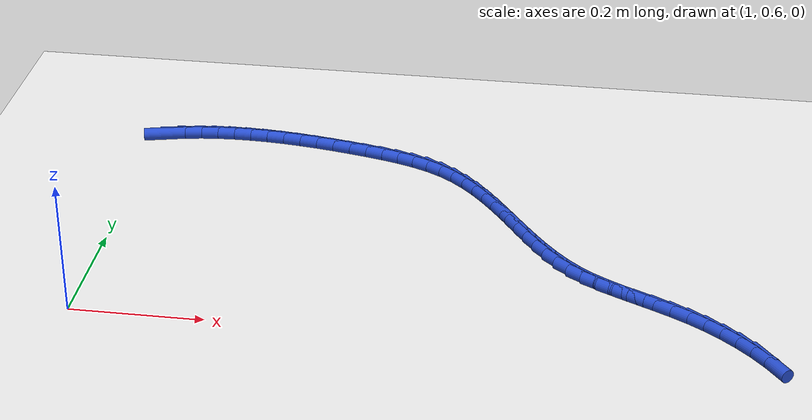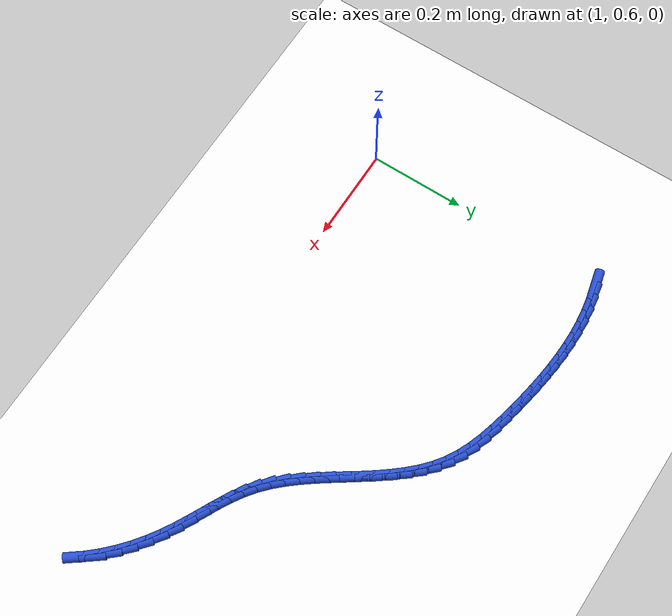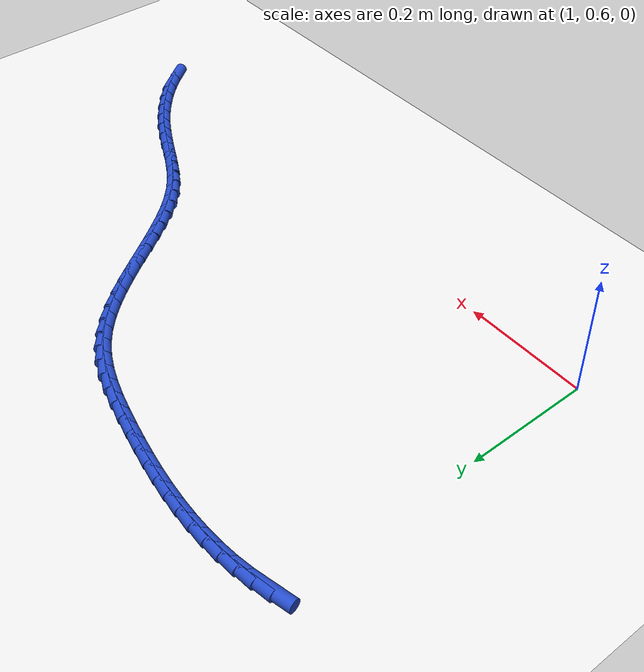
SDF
<sdf version="1.6">
 <world name="default">
  <model name="ground_plane">
   <static>1</static>
   <link name="link">
    <collision name="collision">
     <geometry><plane><normal>0 0 1</normal><size>100 100</size></plane></geometry>
     <surface><friction><ode><mu>100</mu><mu2>50</mu2></ode></friction></surface>
    </collision>
    <visual name="visual">
     <cast_shadows>0</cast_shadows>
     <geometry><plane><normal>0 0 1</normal><size>100 100</size></plane></geometry>
     <material>
      <script><uri>file://media/materials/scripts/gazebo.material</uri><name>Gazebo/WhiteGlow</name></script>
     </material>
    </visual>
   </link>
  </model>
  <model name="line">
   <link name="link_59">
    <pose>1.016177352178573 1.121149766386266 0.01 0 1.57 0.2371604154753137</pose>
    <collision name="collision">
     <geometry><cylinder><radius>0.01</radius><length>0.08</length></cylinder></geometry>
    </collision>
    <visual name="visual">
     <material>
      <script><name>Gazebo/Blue</name><uri>file://media/materials/scripts/gazebo.material</uri></script>
     </material>
     <geometry><cylinder><radius>0.01</radius><length>0.08</length></cylinder></geometry>
    </visual>
   </link>
   <link name="link_60">
    <pose>1.0425087250473066 1.127514300086119 0.01 0 1.57 0.17025556475605913</pose>
    <collision name="collision">
     <geometry><cylinder><radius>0.01</radius><length>0.08</length></cylinder></geometry>
    </collision>
    <visual name="visual">
     <material>
      <script><name>Gazebo/Blue</name><uri>file://media/materials/scripts/gazebo.material</uri></script>
     </material>
     <geometry><cylinder><radius>0.01</radius><length>0.08</length></cylinder></geometry>
    </visual>
   </link>
   <link name="link_61">
    <pose>1.0692879614228532 1.1321181845014565 0.01 0 1.57 0.10882468767725949</pose>
    <collision name="collision">
     <geometry><cylinder><radius>0.01</radius><length>0.08</length></cylinder></geometry>
    </collision>
    <visual name="visual">
     <material>
      <script><name>Gazebo/Blue</name><uri>file://media/materials/scripts/gazebo.material</uri></script>
     </material>
     <geometry><cylinder><radius>0.01</radius><length>0.08</length></cylinder></geometry>
    </visual>
   </link>
   <link name="link_62">
    <pose>1.096456602086862 1.1350865304532647 0.01 0 1.57 0.052969005391412013</pose>
    <collision name="collision">
     <geometry><cylinder><radius>0.01</radius><length>0.08</length></cylinder></geometry>
    </collision>
    <visual name="visual">
     <material>
      <script><name>Gazebo/Blue</name><uri>file://media/materials/scripts/gazebo.material</uri></script>
     </material>
     <geometry><cylinder><radius>0.01</radius><length>0.08</length></cylinder></geometry>
    </visual>
   </link>
   <link name="link_63">
    <pose>1.1239561591937555 1.1365445184635767 0.01 0 1.57 0.002621721932465468</pose>
    <collision name="collision">
     <geometry><cylinder><radius>0.01</radius><length>0.08</length></cylinder></geometry>
    </collision>
    <visual name="visual">
     <material>
      <script><name>Gazebo/Blue</name><uri>file://media/materials/scripts/gazebo.material</uri></script>
     </material>
     <geometry><cylinder><radius>0.01</radius><length>0.08</length></cylinder></geometry>
    </visual>
   </link>
   <link name="link_64">
    <pose>1.1517281448979548 1.136617329054425 0.01 0 1.57 -0.042395414414124734</pose>
    <collision name="collision">
     <geometry><cylinder><radius>0.01</radius><length>0.08</length></cylinder></geometry>
    </collision>
    <visual name="visual">
     <material>
      <script><name>Gazebo/Blue</name><uri>file://media/materials/scripts/gazebo.material</uri></script>
     </material>
     <geometry><cylinder><radius>0.01</radius><length>0.08</length></cylinder></geometry>
    </visual>
   </link>
   <link name="link_65">
    <pose>1.1797140713538823 1.1354301427478426 0.01 0 1.57 -0.08232554958904123</pose>
    <collision name="collision">
     <geometry><cylinder><radius>0.01</radius><length>0.08</length></cylinder></geometry>
    </collision>
    <visual name="visual">
     <material>
      <script><name>Gazebo/Blue</name><uri>file://media/materials/scripts/gazebo.material</uri></script>
     </material>
     <geometry><cylinder><radius>0.01</radius><length>0.08</length></cylinder></geometry>
    </visual>
   </link>
   <link name="link_66">
    <pose>1.2078554507159593 1.1331081400658622 0.01 0 1.57 -0.11743987511740568</pose>
    <collision name="collision">
     <geometry><cylinder><radius>0.01</radius><length>0.08</length></cylinder></geometry>
    </collision>
    <visual name="visual">
     <material>
      <script><name>Gazebo/Blue</name><uri>file://media/materials/scripts/gazebo.material</uri></script>
     </material>
     <geometry><cylinder><radius>0.01</radius><length>0.08</length></cylinder></geometry>
    </visual>
   </link>
   <link name="link_67">
    <pose>1.2360937951386077 1.129776501530516 0.01 0 1.57 -0.14801031963670133</pose>
    <collision name="collision">
     <geometry><cylinder><radius>0.01</radius><length>0.08</length></cylinder></geometry>
    </collision>
    <visual name="visual">
     <material>
      <script><name>Gazebo/Blue</name><uri>file://media/materials/scripts/gazebo.material</uri></script>
     </material>
     <geometry><cylinder><radius>0.01</radius><length>0.08</length></cylinder></geometry>
    </visual>
   </link>
   <link name="link_68">
    <pose>1.2643706167762492 1.1255604076638377 0.01 0 1.57 -0.17429027165801564</pose>
    <collision name="collision">
     <geometry><cylinder><radius>0.01</radius><length>0.08</length></cylinder></geometry>
    </collision>
    <visual name="visual">
     <material>
      <script><name>Gazebo/Blue</name><uri>file://media/materials/scripts/gazebo.material</uri></script>
     </material>
     <geometry><cylinder><radius>0.01</radius><length>0.08</length></cylinder></geometry>
    </visual>
   </link>
   <link name="link_69">
    <pose>1.292627427783305 1.1205850389878593 0.01 0 1.57 -0.19650138399546405</pose>
    <collision name="collision">
     <geometry><cylinder><radius>0.01</radius><length>0.08</length></cylinder></geometry>
    </collision>
    <visual name="visual">
     <material>
      <script><name>Gazebo/Blue</name><uri>file://media/materials/scripts/gazebo.material</uri></script>
     </material>
     <geometry><cylinder><radius>0.01</radius><length>0.08</length></cylinder></geometry>
    </visual>
   </link>
   <link name="link_70">
    <pose>1.320805740314198 1.1149755760246143 0.01 0 1.57 -0.21537119461118467</pose>
    <collision name="collision">
     <geometry><cylinder><radius>0.01</radius><length>0.08</length></cylinder></geometry>
    </collision>
    <visual name="visual">
     <material>
      <script><name>Gazebo/Blue</name><uri>file://media/materials/scripts/gazebo.material</uri></script>
     </material>
     <geometry><cylinder><radius>0.01</radius><length>0.08</length></cylinder></geometry>
    </visual>
   </link>
   <link name="link_71">
    <pose>1.3488403154393285 1.1088426162872544 0.01 0 1.57 -0.2410400030072102</pose>
    <collision name="collision">
     <geometry><cylinder><radius>0.01</radius><length>0.08</length></cylinder></geometry>
    </collision>
    <visual name="visual">
     <material>
      <script><name>Gazebo/Blue</name><uri>file://media/materials/scripts/gazebo.material</uri></script>
     </material>
     <geometry><cylinder><radius>0.01</radius><length>0.08</length></cylinder></geometry>
    </visual>
   </link>
   <link name="link_72">
    <pose>1.3765436285444759 1.1020326081212797 0.01 0 1.57 -0.2828597026903335</pose>
    <collision name="collision">
     <geometry><cylinder><radius>0.01</radius><length>0.08</length></cylinder></geometry>
    </collision>
    <visual name="visual">
     <material>
      <script><name>Gazebo/Blue</name><uri>file://media/materials/scripts/gazebo.material</uri></script>
     </material>
     <geometry><cylinder><radius>0.01</radius><length>0.08</length></cylinder></geometry>
    </visual>
   </link>
   <link name="link_73">
    <pose>1.4036217969662108 1.0941622559715984 0.01 0 1.57 -0.3423580944178914</pose>
    <collision name="collision">
     <geometry><cylinder><radius>0.01</radius><length>0.08</length></cylinder></geometry>
    </collision>
    <visual name="visual">
     <material>
      <script><name>Gazebo/Blue</name><uri>file://media/materials/scripts/gazebo.material</uri></script>
     </material>
     <geometry><cylinder><radius>0.01</radius><length>0.08</length></cylinder></geometry>
    </visual>
   </link>
   <link name="link_74">
    <pose>1.429777391943266 1.0848406043612269 0.01 0 1.57 -0.42094767221198687</pose>
    <collision name="collision">
     <geometry><cylinder><radius>0.01</radius><length>0.08</length></cylinder></geometry>
    </collision>
    <visual name="visual">
     <material>
      <script><name>Gazebo/Blue</name><uri>file://media/materials/scripts/gazebo.material</uri></script>
     </material>
     <geometry><cylinder><radius>0.01</radius><length>0.08</length></cylinder></geometry>
    </visual>
   </link>
   <link name="link_75">
    <pose>1.4547129847143716 1.07367669781318 0.01 0 1.57 -0.5196304103715493</pose>
    <collision name="collision">
     <geometry><cylinder><radius>0.01</radius><length>0.08</length></cylinder></geometry>
    </collision>
    <visual name="visual">
     <material>
      <script><name>Gazebo/Blue</name><uri>file://media/materials/scripts/gazebo.material</uri></script>
     </material>
     <geometry><cylinder><radius>0.01</radius><length>0.08</length></cylinder></geometry>
    </visual>
   </link>
   <link name="link_76">
    <pose>1.4781312808177431 1.0602797654586327 0.01 0 1.57 -0.630165023898938</pose>
    <collision name="collision">
     <geometry><cylinder><radius>0.01</radius><length>0.08</length></cylinder></geometry>
    </collision>
    <visual name="visual">
     <material>
      <script><name>Gazebo/Blue</name><uri>file://media/materials/scripts/gazebo.material</uri></script>
     </material>
     <geometry><cylinder><radius>0.01</radius><length>0.08</length></cylinder></geometry>
    </visual>
   </link>
   <link name="link_77">
    <pose>1.4998603149173992 1.0444313139272479 0.01 0 1.57 -0.7279825419612826</pose>
    <collision name="collision">
     <geometry><cylinder><radius>0.01</radius><length>0.08</length></cylinder></geometry>
    </collision>
    <visual name="visual">
     <material>
      <script><name>Gazebo/Blue</name><uri>file://media/materials/scripts/gazebo.material</uri></script>
     </material>
     <geometry><cylinder><radius>0.01</radius><length>0.08</length></cylinder></geometry>
    </visual>
   </link>
   <link name="link_78">
    <pose>1.5200858039162712 1.0264045200887784 0.01 0 1.57 -0.807904873127729</pose>
    <collision name="collision">
     <geometry><cylinder><radius>0.01</radius><length>0.08</length></cylinder></geometry>
    </collision>
    <visual name="visual">
     <material>
      <script><name>Gazebo/Blue</name><uri>file://media/materials/scripts/gazebo.material</uri></script>
     </material>
     <geometry><cylinder><radius>0.01</radius><length>0.08</length></cylinder></geometry>
    </visual>
   </link>
   <link name="link_79">
    <pose>1.5390568578388761 1.0065597010394653 0.01 0 1.57 -0.8701689669447091</pose>
    <collision name="collision">
     <geometry><cylinder><radius>0.01</radius><length>0.08</length></cylinder></geometry>
    </collision>
    <visual name="visual">
     <material>
      <script><name>Gazebo/Blue</name><uri>file://media/materials/scripts/gazebo.material</uri></script>
     </material>
     <geometry><cylinder><radius>0.01</radius><length>0.08</length></cylinder></geometry>
    </visual>
   </link>
   <link name="link_80">
    <pose>1.5570225867097311 0.9852571738755497 0.01 0 1.57 -0.9156953591906659</pose>
    <collision name="collision">
     <geometry><cylinder><radius>0.01</radius><length>0.08</length></cylinder></geometry>
    </collision>
    <visual name="visual">
     <material>
      <script><name>Gazebo/Blue</name><uri>file://media/materials/scripts/gazebo.material</uri></script>
     </material>
     <geometry><cylinder><radius>0.01</radius><length>0.08</length></cylinder></geometry>
    </visual>
   </link>
   <link name="link_81">
    <pose>1.5742321005533535 0.9628572556932736 0.01 0 1.57 -0.9455283617330348</pose>
    <collision name="collision">
     <geometry><cylinder><radius>0.01</radius><length>0.08</length></cylinder></geometry>
    </collision>
    <visual name="visual">
     <material>
      <script><name>Gazebo/Blue</name><uri>file://media/materials/scripts/gazebo.material</uri></script>
     </material>
     <geometry><cylinder><radius>0.01</radius><length>0.08</length></cylinder></geometry>
    </visual>
   </link>
   <link name="link_82">
    <pose>1.59093450939426 0.939720263588878 0.01 0 1.57 -0.9605046367127525</pose>
    <collision name="collision">
     <geometry><cylinder><radius>0.01</radius><length>0.08</length></cylinder></geometry>
    </collision>
    <visual name="visual">
     <material>
      <script><name>Gazebo/Blue</name><uri>file://media/materials/scripts/gazebo.material</uri></script>
     </material>
     <geometry><cylinder><radius>0.01</radius><length>0.08</length></cylinder></geometry>
    </visual>
   </link>
   <link name="link_83">
    <pose>1.6073789232569675 0.9162065146586041 0.01 0 1.57 -0.9610865770711466</pose>
    <collision name="collision">
     <geometry><cylinder><radius>0.01</radius><length>0.08</length></cylinder></geometry>
    </collision>
    <visual name="visual">
     <material>
      <script><name>Gazebo/Blue</name><uri>file://media/materials/scripts/gazebo.material</uri></script>
     </material>
     <geometry><cylinder><radius>0.01</radius><length>0.08</length></cylinder></geometry>
    </visual>
   </link>
   <link name="link_84">
    <pose>1.6238144521659936 0.8926763259986936 0.01 0 1.57 -0.9472958273331945</pose>
    <collision name="collision">
     <geometry><cylinder><radius>0.01</radius><length>0.08</length></cylinder></geometry>
    </collision>
    <visual name="visual">
     <material>
      <script><name>Gazebo/Blue</name><uri>file://media/materials/scripts/gazebo.material</uri></script>
     </material>
     <geometry><cylinder><radius>0.01</radius><length>0.08</length></cylinder></geometry>
    </visual>
   </link>
   <link name="link_85">
    <pose>1.6404902061458546 0.8694900147053876 0.01 0 1.57 -0.9187112558014591</pose>
    <collision name="collision">
     <geometry><cylinder><radius>0.01</radius><length>0.08</length></cylinder></geometry>
    </collision>
    <visual name="visual">
     <material>
      <script><name>Gazebo/Blue</name><uri>file://media/materials/scripts/gazebo.material</uri></script>
     </material>
     <geometry><cylinder><radius>0.01</radius><length>0.08</length></cylinder></geometry>
    </visual>
   </link>
   <link name="link_86">
    <pose>1.657655295221068 0.8470078978749274 0.01 0 1.57 -0.87452987195722</pose>
    <collision name="collision">
     <geometry><cylinder><radius>0.01</radius><length>0.08</length></cylinder></geometry>
    </collision>
    <visual name="visual">
     <material>
      <script><name>Gazebo/Blue</name><uri>file://media/materials/scripts/gazebo.material</uri></script>
     </material>
     <geometry><cylinder><radius>0.01</radius><length>0.08</length></cylinder></geometry>
    </visual>
   </link>
   <link name="link_87">
    <pose>1.675558829416151 0.8255902926035545 0.01 0 1.57 -0.8137233466057542</pose>
    <collision name="collision">
     <geometry><cylinder><radius>0.01</radius><length>0.08</length></cylinder></geometry>
    </collision>
    <visual name="visual">
     <material>
      <script><name>Gazebo/Blue</name><uri>file://media/materials/scripts/gazebo.material</uri></script>
     </material>
     <geometry><cylinder><radius>0.01</radius><length>0.08</length></cylinder></geometry>
    </visual>
   </link>
   <link name="link_88">
    <pose>1.69444991875562 0.8055975159875103 0.01 0 1.57 -0.7353524855056122</pose>
    <collision name="collision">
     <geometry><cylinder><radius>0.01</radius><length>0.08</length></cylinder></geometry>
    </collision>
    <visual name="visual">
     <material>
      <script><name>Gazebo/Blue</name><uri>file://media/materials/scripts/gazebo.material</uri></script>
     </material>
     <geometry><cylinder><radius>0.01</radius><length>0.08</length></cylinder></geometry>
    </visual>
   </link>
   <link name="link_89">
    <pose>1.7145776732639924 0.7873898851230356 0.01 0 1.57 -0.6417347605080725</pose>
    <collision name="collision">
     <geometry><cylinder><radius>0.01</radius><length>0.08</length></cylinder></geometry>
    </collision>
    <visual name="visual">
     <material>
      <script><name>Gazebo/Blue</name><uri>file://media/materials/scripts/gazebo.material</uri></script>
     </material>
     <geometry><cylinder><radius>0.01</radius><length>0.08</length></cylinder></geometry>
    </visual>
   </link>
   <link name="link_90">
    <pose>1.7361556708683856 0.7712658617214756 0.01 0 1.57 -0.5588072952677111</pose>
    <collision name="collision">
     <geometry><cylinder><radius>0.01</radius><length>0.08</length></cylinder></geometry>
    </collision>
    <visual name="visual">
     <material>
      <script><name>Gazebo/Blue</name><uri>file://media/materials/scripts/gazebo.material</uri></script>
     </material>
     <geometry><cylinder><radius>0.01</radius><length>0.08</length></cylinder></geometry>
    </visual>
   </link>
   <link name="link_91">
    <pose>1.759063227002183 0.7569420129053506 0.01 0 1.57 -0.5016559860547096</pose>
    <collision name="collision">
     <geometry><cylinder><radius>0.01</radius><length>0.08</length></cylinder></geometry>
    </collision>
    <visual name="visual">
     <material>
      <script><name>Gazebo/Blue</name><uri>file://media/materials/scripts/gazebo.material</uri></script>
     </material>
     <geometry><cylinder><radius>0.01</radius><length>0.08</length></cylinder></geometry>
    </visual>
   </link>
   <link name="link_92">
    <pose>1.782996341823933 0.7438157848414199 0.01 0 1.57 -0.4703759876412317</pose>
    <collision name="collision">
     <geometry><cylinder><radius>0.01</radius><length>0.08</length></cylinder></geometry>
    </collision>
    <visual name="visual">
     <material>
      <script><name>Gazebo/Blue</name><uri>file://media/materials/scripts/gazebo.material</uri></script>
     </material>
     <geometry><cylinder><radius>0.01</radius><length>0.08</length></cylinder></geometry>
    </visual>
   </link>
   <link name="link_93">
    <pose>1.8076491320996984 0.7312813450279851 0.01 0 1.57 -0.46413237019497855</pose>
    <collision name="collision">
     <geometry><cylinder><radius>0.01</radius><length>0.08</length></cylinder></geometry>
    </collision>
    <visual name="visual">
     <material>
      <script><name>Gazebo/Blue</name><uri>file://media/materials/scripts/gazebo.material</uri></script>
     </material>
     <geometry><cylinder><radius>0.01</radius><length>0.08</length></cylinder></geometry>
    </visual>
   </link>
   <link name="link_94">
    <pose>1.8327157145955444 0.7187328609633474 0.01 0 1.57 -0.48194340666544283</pose>
    <collision name="collision">
     <geometry><cylinder><radius>0.01</radius><length>0.08</length></cylinder></geometry>
    </collision>
    <visual name="visual">
     <material>
      <script><name>Gazebo/Blue</name><uri>file://media/materials/scripts/gazebo.material</uri></script>
     </material>
     <geometry><cylinder><radius>0.01</radius><length>0.08</length></cylinder></geometry>
    </visual>
   </link>
   <link name="link_95">
    <pose>1.8578902060775349 0.7055645001458077 0.01 0 1.57 -0.5228138061626159</pose>
    <collision name="collision">
     <geometry><cylinder><radius>0.01</radius><length>0.08</length></cylinder></geometry>
    </collision>
    <visual name="visual">
     <material>
      <script><name>Gazebo/Blue</name><uri>file://media/materials/scripts/gazebo.material</uri></script>
     </material>
     <geometry><cylinder><radius>0.01</radius><length>0.08</length></cylinder></geometry>
    </visual>
   </link>
   <link name="link_96">
    <pose>1.88286672331851 0.691170430427041 0.01 0 1.57 -0.5817265134043124</pose>
    <collision name="collision">
     <geometry><cylinder><radius>0.01</radius><length>0.08</length></cylinder></geometry>
    </collision>
    <visual name="visual">
     <material>
      <script><name>Gazebo/Blue</name><uri>file://media/materials/scripts/gazebo.material</uri></script>
     </material>
     <geometry><cylinder><radius>0.01</radius><length>0.08</length></cylinder></geometry>
    </visual>
   </link>
   <link name="link_97">
    <pose>1.9073418720693298 0.6750746215656741 0.01 0 1.57 -0.6439338058220339</pose>
    <collision name="collision">
     <geometry><cylinder><radius>0.01</radius><length>0.08</length></cylinder></geometry>
    </collision>
    <visual name="visual">
     <material>
      <script><name>Gazebo/Blue</name><uri>file://media/materials/scripts/gazebo.material</uri></script>
     </material>
     <geometry><cylinder><radius>0.01</radius><length>0.08</length></cylinder></geometry>
    </visual>
   </link>
   <link name="link_98">
    <pose>1.9310217999951773 0.6572986606817413 0.01 0 1.57 -0.7073426402311229</pose>
    <collision name="collision">
     <geometry><cylinder><radius>0.01</radius><length>0.08</length></cylinder></geometry>
    </collision>
    <visual name="visual">
     <material>
      <script><name>Gazebo/Blue</name><uri>file://media/materials/scripts/gazebo.material</uri></script>
     </material>
     <geometry><cylinder><radius>0.01</radius><length>0.08</length></cylinder></geometry>
    </visual>
   </link>
   <link name="link_99">
    <pose>1.9536149410096384 0.6379833643138326 0.01 0 1.57 -0.7734504993696855</pose>
    <collision name="collision">
     <geometry><cylinder><radius>0.01</radius><length>0.08</length></cylinder></geometry>
    </collision>
    <visual name="visual">
     <material>
      <script><name>Gazebo/Blue</name><uri>file://media/materials/scripts/gazebo.material</uri></script>
     </material>
     <geometry><cylinder><radius>0.01</radius><length>0.08</length></cylinder></geometry>
    </visual>
   </link>
   <link name="link_100">
    <pose>1.9748297290262957 0.6172695490005378 0.01 0 1.57 -0.8437821203853102</pose>
    <collision name="collision">
     <geometry><cylinder><radius>0.01</radius><length>0.08</length></cylinder></geometry>
    </collision>
    <visual name="visual">
     <material>
      <script><name>Gazebo/Blue</name><uri>file://media/materials/scripts/gazebo.material</uri></script>
     </material>
     <geometry><cylinder><radius>0.01</radius><length>0.08</length></cylinder></geometry>
    </visual>
   </link>
   <link name="link_101">
    <pose>1.9943745979587342 0.5952980312804476 0.01 0 1.57 -0.919932866135751</pose>
    <collision name="collision">
     <geometry><cylinder><radius>0.01</radius><length>0.08</length></cylinder></geometry>
    </collision>
    <visual name="visual">
     <material>
      <script><name>Gazebo/Blue</name><uri>file://media/materials/scripts/gazebo.material</uri></script>
     </material>
     <geometry><cylinder><radius>0.01</radius><length>0.08</length></cylinder></geometry>
    </visual>
   </link>
  </model>
 </world>
</sdf>
